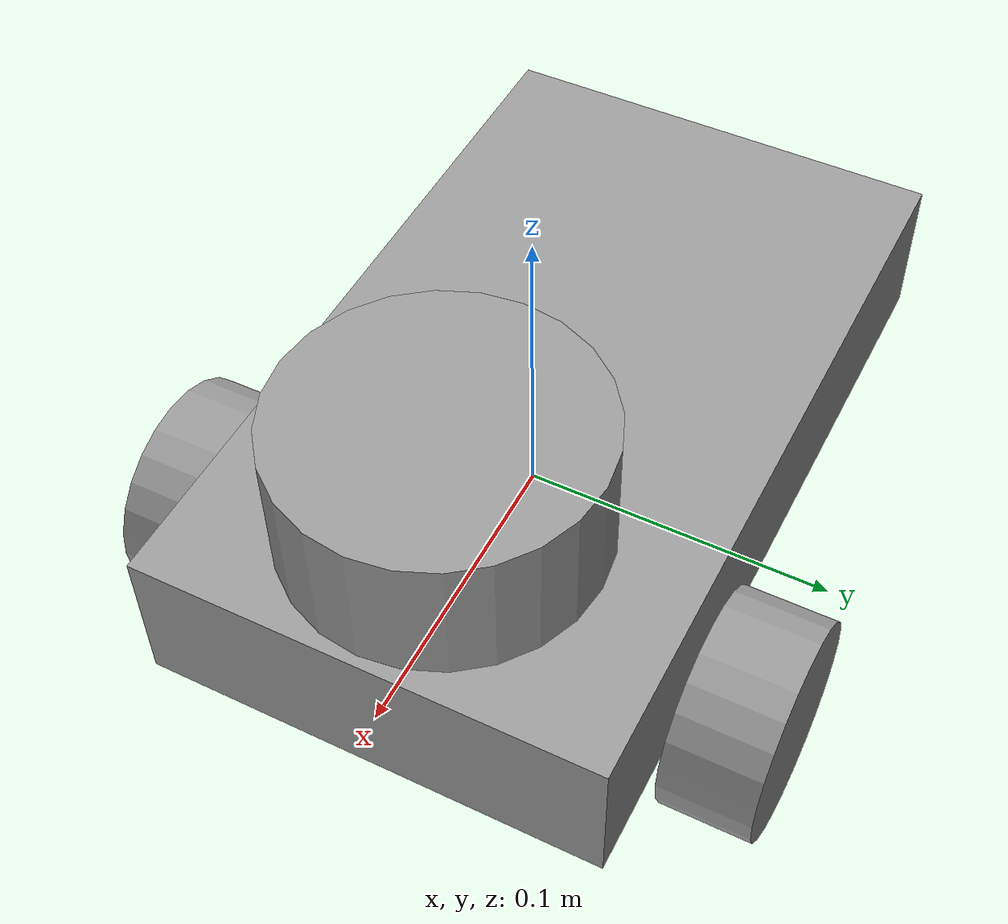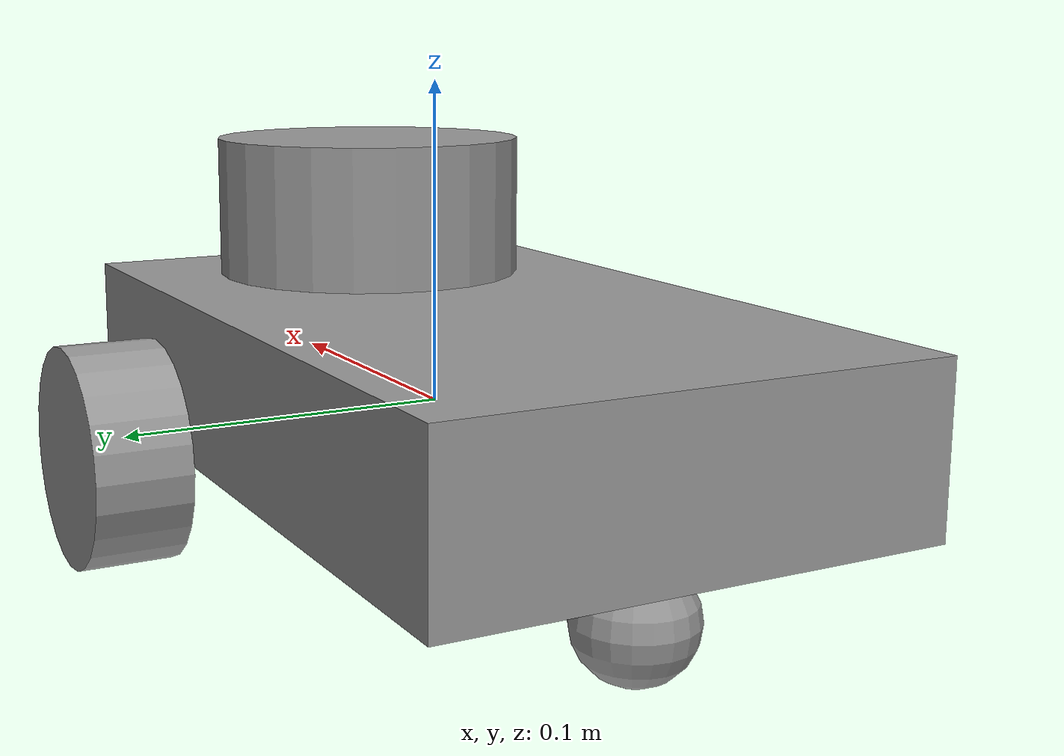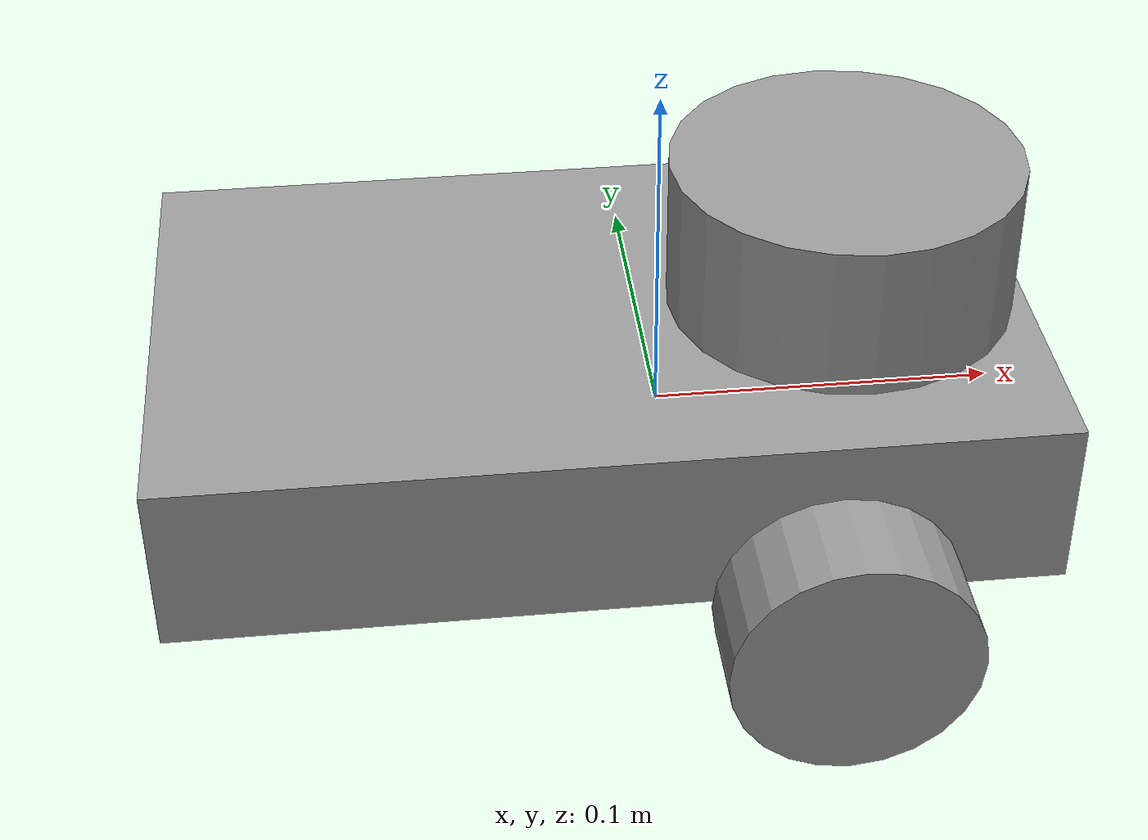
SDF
<?xml version='1.0'?>
<sdf version='1.5'>
  <model name='my_lidar'>
    <link name='link_0'>
      <inertial>
        <mass>1</mass>
        <inertia>
          <ixx>0.166667</ixx>
          <ixy>0</ixy>
          <ixz>0</ixz>
          <iyy>0.166667</iyy>
          <iyz>0</iyz>
          <izz>0.166667</izz>
        </inertia>
        <pose>0 0 0 0 -0 0</pose>
      </inertial>
      <pose>-0.019224 0.000234 0.009501 0 -0 0</pose>
      <gravity>1</gravity>
      <self_collide>0</self_collide>
      <kinematic>0</kinematic>
      <enable_wind>0</enable_wind>
      <visual name='visual'>
        <pose>0 0 0 0 -0 0</pose>
        <geometry>
          <box>
            <size>0.25 0.15 0.05</size>
          </box>
        </geometry>
        <material>
          <lighting>1</lighting>
          <script>
            <uri>file://media/materials/scripts/gazebo.material</uri>
            <name>Gazebo/Grey</name>
          </script>
          <shader type='pixel'>
            <normal_map>__default__</normal_map>
          </shader>
          <ambient>0.3 0.3 0.3 1</ambient>
          <diffuse>0.7 0.7 0.7 1</diffuse>
          <specular>0.01 0.01 0.01 1</specular>
          <emissive>0 0 0 1</emissive>
        </material>
        <transparency>0</transparency>
        <cast_shadows>1</cast_shadows>
      </visual>
      <collision name='collision'>
        <laser_retro>0</laser_retro>
        <max_contacts>10</max_contacts>
        <pose>0 0 0 0 -0 0</pose>
        <geometry>
          <box>
            <size>0.25 0.15 0.05</size>
          </box>
        </geometry>
        <surface>
          <friction>
            <ode>
              <mu>1</mu>
              <mu2>1</mu2>
              <fdir1>0 0 0</fdir1>
              <slip1>0</slip1>
              <slip2>0</slip2>
            </ode>
            <torsional>
              <coefficient>1</coefficient>
              <patch_radius>0</patch_radius>
              <surface_radius>0</surface_radius>
              <use_patch_radius>1</use_patch_radius>
              <ode>
                <slip>0</slip>
              </ode>
            </torsional>
          </friction>
          <bounce>
            <restitution_coefficient>0</restitution_coefficient>
            <threshold>1e+06</threshold>
          </bounce>
          <contact>
            <collide_without_contact>0</collide_without_contact>
            <collide_without_contact_bitmask>1</collide_without_contact_bitmask>
            <collide_bitmask>1</collide_bitmask>
            <ode>
              <soft_cfm>0</soft_cfm>
              <soft_erp>0.2</soft_erp>
              <kp>1e+13</kp>
              <kd>1</kd>
              <max_vel>0.01</max_vel>
              <min_depth>0</min_depth>
            </ode>
            <bullet>
              <split_impulse>1</split_impulse>
              <split_impulse_penetration_threshold>-0.01</split_impulse_penetration_threshold>
              <soft_cfm>0</soft_cfm>
              <soft_erp>0.2</soft_erp>
              <kp>1e+13</kp>
              <kd>1</kd>
            </bullet>
          </contact>
        </surface>
      </collision>
    </link>
    <link name='link_1'>
      <inertial>
        <mass>1</mass>
        <inertia>
          <ixx>0.145833</ixx>
          <ixy>0</ixy>
          <ixz>0</ixz>
          <iyy>0.145833</iyy>
          <iyz>0</iyz>
          <izz>0.125</izz>
        </inertia>
        <pose>0 0 0 0 -0 0</pose>
      </inertial>
      <pose>0.040615 0.092594 -0.015502 1.5708 -0 0</pose>
      <gravity>1</gravity>
      <self_collide>0</self_collide>
      <kinematic>0</kinematic>
      <enable_wind>0</enable_wind>
      <visual name='visual'>
        <pose>0 0 0 0 -0 0</pose>
        <geometry>
          <cylinder>
            <radius>0.035</radius>
            <length>0.03</length>
          </cylinder>
        </geometry>
        <material>
          <lighting>1</lighting>
          <script>
            <uri>file://media/materials/scripts/gazebo.material</uri>
            <name>Gazebo/Grey</name>
          </script>
          <shader type='pixel'>
            <normal_map>__default__</normal_map>
          </shader>
          <ambient>0.3 0.3 0.3 1</ambient>
          <diffuse>0.7 0.7 0.7 1</diffuse>
          <specular>0.01 0.01 0.01 1</specular>
          <emissive>0 0 0 1</emissive>
        </material>
        <transparency>0</transparency>
        <cast_shadows>1</cast_shadows>
      </visual>
      <collision name='collision'>
        <laser_retro>0</laser_retro>
        <max_contacts>10</max_contacts>
        <pose>0 0 0 0 -0 0</pose>
        <geometry>
          <cylinder>
            <radius>0.035</radius>
            <length>0.03</length>
          </cylinder>
        </geometry>
        <surface>
          <friction>
            <ode>
              <mu>1</mu>
              <mu2>1</mu2>
              <fdir1>0 0 0</fdir1>
              <slip1>0</slip1>
              <slip2>0</slip2>
            </ode>
            <torsional>
              <coefficient>1</coefficient>
              <patch_radius>0</patch_radius>
              <surface_radius>0</surface_radius>
              <use_patch_radius>1</use_patch_radius>
              <ode>
                <slip>0</slip>
              </ode>
            </torsional>
          </friction>
          <bounce>
            <restitution_coefficient>0</restitution_coefficient>
            <threshold>1e+06</threshold>
          </bounce>
          <contact>
            <collide_without_contact>0</collide_without_contact>
            <collide_without_contact_bitmask>1</collide_without_contact_bitmask>
            <collide_bitmask>1</collide_bitmask>
            <ode>
              <soft_cfm>0</soft_cfm>
              <soft_erp>0.2</soft_erp>
              <kp>1e+13</kp>
              <kd>1</kd>
              <max_vel>0.01</max_vel>
              <min_depth>0</min_depth>
            </ode>
            <bullet>
              <split_impulse>1</split_impulse>
              <split_impulse_penetration_threshold>-0.01</split_impulse_penetration_threshold>
              <soft_cfm>0</soft_cfm>
              <soft_erp>0.2</soft_erp>
              <kp>1e+13</kp>
              <kd>1</kd>
            </bullet>
          </contact>
        </surface>
      </collision>
    </link>
    <link name='link_1_clone'>
      <inertial>
        <mass>1</mass>
        <inertia>
          <ixx>0.145833</ixx>
          <ixy>0</ixy>
          <ixz>0</ixz>
          <iyy>0.145833</iyy>
          <iyz>0</iyz>
          <izz>0.125</izz>
        </inertia>
        <pose>0 0 0 0 -0 0</pose>
      </inertial>
      <pose>0.040615 -0.092209 -0.015502 1.5708 -0 0</pose>
      <gravity>1</gravity>
      <self_collide>0</self_collide>
      <kinematic>0</kinematic>
      <enable_wind>0</enable_wind>
      <visual name='visual'>
        <pose>0 0 0 0 -0 0</pose>
        <geometry>
          <cylinder>
            <radius>0.035</radius>
            <length>0.03</length>
          </cylinder>
        </geometry>
        <material>
          <lighting>1</lighting>
          <script>
            <uri>file://media/materials/scripts/gazebo.material</uri>
            <name>Gazebo/Grey</name>
          </script>
          <shader type='pixel'>
            <normal_map>__default__</normal_map>
          </shader>
          <ambient>0.3 0.3 0.3 1</ambient>
          <diffuse>0.7 0.7 0.7 1</diffuse>
          <specular>0.01 0.01 0.01 1</specular>
          <emissive>0 0 0 1</emissive>
        </material>
        <transparency>0</transparency>
        <cast_shadows>1</cast_shadows>
      </visual>
      <collision name='collision'>
        <laser_retro>0</laser_retro>
        <max_contacts>10</max_contacts>
        <pose>0 0 0 0 -0 0</pose>
        <geometry>
          <cylinder>
            <radius>0.035</radius>
            <length>0.03</length>
          </cylinder>
        </geometry>
        <surface>
          <friction>
            <ode>
              <mu>1</mu>
              <mu2>1</mu2>
              <fdir1>0 0 0</fdir1>
              <slip1>0</slip1>
              <slip2>0</slip2>
            </ode>
            <torsional>
              <coefficient>1</coefficient>
              <patch_radius>0</patch_radius>
              <surface_radius>0</surface_radius>
              <use_patch_radius>1</use_patch_radius>
              <ode>
                <slip>0</slip>
              </ode>
            </torsional>
          </friction>
          <bounce>
            <restitution_coefficient>0</restitution_coefficient>
            <threshold>1e+06</threshold>
          </bounce>
          <contact>
            <collide_without_contact>0</collide_without_contact>
            <collide_without_contact_bitmask>1</collide_without_contact_bitmask>
            <collide_bitmask>1</collide_bitmask>
            <ode>
              <soft_cfm>0</soft_cfm>
              <soft_erp>0.2</soft_erp>
              <kp>1e+13</kp>
              <kd>1</kd>
              <max_vel>0.01</max_vel>
              <min_depth>0</min_depth>
            </ode>
            <bullet>
              <split_impulse>1</split_impulse>
              <split_impulse_penetration_threshold>-0.01</split_impulse_penetration_threshold>
              <soft_cfm>0</soft_cfm>
              <soft_erp>0.2</soft_erp>
              <kp>1e+13</kp>
              <kd>1</kd>
            </bullet>
          </contact>
        </surface>
      </collision>
    </link>
    <link name='link_2'>
      <inertial>
        <mass>1</mass>
        <inertia>
          <ixx>0.1</ixx>
          <ixy>0</ixy>
          <ixz>0</ixz>
          <iyy>0.1</iyy>
          <iyz>0</iyz>
          <izz>0.1</izz>
        </inertia>
        <pose>0 0 0 0 -0 0</pose>
      </inertial>
      <pose>-0.114514 0.000978 -0.032999 0 -0 0</pose>
      <gravity>1</gravity>
      <self_collide>0</self_collide>
      <kinematic>0</kinematic>
      <enable_wind>0</enable_wind>
      <visual name='visual'>
        <pose>0 0 0 0 -0 0</pose>
        <geometry>
          <sphere>
            <radius>0.0175</radius>
          </sphere>
        </geometry>
        <material>
          <lighting>1</lighting>
          <script>
            <uri>file://media/materials/scripts/gazebo.material</uri>
            <name>Gazebo/Grey</name>
          </script>
          <shader type='pixel'>
            <normal_map>__default__</normal_map>
          </shader>
          <ambient>0.3 0.3 0.3 1</ambient>
          <diffuse>0.7 0.7 0.7 1</diffuse>
          <specular>0.01 0.01 0.01 1</specular>
          <emissive>0 0 0 1</emissive>
        </material>
        <transparency>0</transparency>
        <cast_shadows>1</cast_shadows>
      </visual>
      <collision name='collision'>
        <laser_retro>0</laser_retro>
        <max_contacts>10</max_contacts>
        <pose>0 0 0 0 -0 0</pose>
        <geometry>
          <sphere>
            <radius>0.0175</radius>
          </sphere>
        </geometry>
        <surface>
          <friction>
            <ode>
              <mu>1</mu>
              <mu2>1</mu2>
              <fdir1>0 0 0</fdir1>
              <slip1>0</slip1>
              <slip2>0</slip2>
            </ode>
            <torsional>
              <coefficient>1</coefficient>
              <patch_radius>0</patch_radius>
              <surface_radius>0</surface_radius>
              <use_patch_radius>1</use_patch_radius>
              <ode>
                <slip>0</slip>
              </ode>
            </torsional>
          </friction>
          <bounce>
            <restitution_coefficient>0</restitution_coefficient>
            <threshold>1e+06</threshold>
          </bounce>
          <contact>
            <collide_without_contact>0</collide_without_contact>
            <collide_without_contact_bitmask>1</collide_without_contact_bitmask>
            <collide_bitmask>1</collide_bitmask>
            <ode>
              <soft_cfm>0</soft_cfm>
              <soft_erp>0.2</soft_erp>
              <kp>1e+13</kp>
              <kd>1</kd>
              <max_vel>0.01</max_vel>
              <min_depth>0</min_depth>
            </ode>
            <bullet>
              <split_impulse>1</split_impulse>
              <split_impulse_penetration_threshold>-0.01</split_impulse_penetration_threshold>
              <soft_cfm>0</soft_cfm>
              <soft_erp>0.2</soft_erp>
              <kp>1e+13</kp>
              <kd>1</kd>
            </bullet>
          </contact>
        </surface>
      </collision>
    </link>
    <link name='link_3'>
      <inertial>
        <mass>1</mass>
        <inertia>
          <ixx>0.145833</ixx>
          <ixy>0</ixy>
          <ixz>0</ixz>
          <iyy>0.145833</iyy>
          <iyz>0</iyz>
          <izz>0.125</izz>
        </inertia>
        <pose>0 0 0 0 -0 0</pose>
      </inertial>
      <pose>0.05251 -0.001596 0.054501 0 -0 0</pose>
      <gravity>1</gravity>
      <self_collide>0</self_collide>
      <kinematic>0</kinematic>
      <enable_wind>0</enable_wind>
      <visual name='visual'>
        <pose>0 0 0 0 -0 0</pose>
        <geometry>
          <cylinder>
            <radius>0.05</radius>
            <length>0.05</length>
          </cylinder>
        </geometry>
        <material>
          <lighting>1</lighting>
          <script>
            <uri>file://media/materials/scripts/gazebo.material</uri>
            <name>Gazebo/Grey</name>
          </script>
          <shader type='pixel'>
            <normal_map>__default__</normal_map>
          </shader>
          <ambient>0.3 0.3 0.3 1</ambient>
          <diffuse>0.7 0.7 0.7 1</diffuse>
          <specular>0.01 0.01 0.01 1</specular>
          <emissive>0 0 0 1</emissive>
        </material>
        <transparency>0</transparency>
        <cast_shadows>1</cast_shadows>
      </visual>
      <collision name='collision'>
        <laser_retro>1</laser_retro>
        <max_contacts>10</max_contacts>
        <pose>0 0 0 0 -0 0</pose>
        <geometry>
          <cylinder>
            <radius>0.05</radius>
            <length>0.05</length>
          </cylinder>
        </geometry>
        <surface>
          <friction>
            <ode>
              <mu>1</mu>
              <mu2>1</mu2>
              <fdir1>0 0 0</fdir1>
              <slip1>0</slip1>
              <slip2>0</slip2>
            </ode>
            <torsional>
              <coefficient>1</coefficient>
              <patch_radius>0</patch_radius>
              <surface_radius>0</surface_radius>
              <use_patch_radius>1</use_patch_radius>
              <ode>
                <slip>0</slip>
              </ode>
            </torsional>
          </friction>
          <bounce>
            <restitution_coefficient>0</restitution_coefficient>
            <threshold>1e+06</threshold>
          </bounce>
          <contact>
            <collide_without_contact>0</collide_without_contact>
            <collide_without_contact_bitmask>1</collide_without_contact_bitmask>
            <collide_bitmask>1</collide_bitmask>
            <ode>
              <soft_cfm>0</soft_cfm>
              <soft_erp>0.2</soft_erp>
              <kp>1e+13</kp>
              <kd>1</kd>
              <max_vel>0.01</max_vel>
              <min_depth>0</min_depth>
            </ode>
            <bullet>
              <split_impulse>1</split_impulse>
              <split_impulse_penetration_threshold>-0.01</split_impulse_penetration_threshold>
              <soft_cfm>0</soft_cfm>
              <soft_erp>0.2</soft_erp>
              <kp>1e+13</kp>
              <kd>1</kd>
            </bullet>
          </contact>
        </surface>
      </collision>
    </link>
    <joint name='link_0_right_link1_clone' type='revolute'>
      <parent>link_0</parent>
      <child>link_1_clone</child>
      <pose>0 0 0 0 -0 0</pose>
      <axis>
        <xyz>0 0 1</xyz>
        <limit>
          <lower>-1.79769e+308</lower>
          <upper>1.79769e+308</upper>
          <effort>-1</effort>
          <velocity>-1</velocity>
        </limit>
        <dynamics>
          <spring_reference>0</spring_reference>
          <spring_stiffness>0</spring_stiffness>
          <damping>0</damping>
          <friction>0</friction>
        </dynamics>
      </axis>
      <physics>
        <ode>
          <limit>
            <cfm>0</cfm>
            <erp>0.2</erp>
          </limit>
          <suspension>
            <cfm>0</cfm>
            <erp>0.2</erp>
          </suspension>
        </ode>
      </physics>
    </joint>
    <joint name='link_0_left_link_1' type='revolute'>
      <parent>link_0</parent>
      <child>link_1</child>
      <pose>0 0 0 0 -0 0</pose>
      <axis>
        <xyz>0 0 1</xyz>
        <limit>
          <lower>-1.79769e+308</lower>
          <upper>1.79769e+308</upper>
          <effort>-1</effort>
          <velocity>-1</velocity>
        </limit>
        <dynamics>
          <spring_reference>0</spring_reference>
          <spring_stiffness>0</spring_stiffness>
          <damping>0</damping>
          <friction>0</friction>
        </dynamics>
      </axis>
      <physics>
        <ode>
          <limit>
            <cfm>0</cfm>
            <erp>0.2</erp>
          </limit>
          <suspension>
            <cfm>0</cfm>
            <erp>0.2</erp>
          </suspension>
        </ode>
      </physics>
    </joint>
    <joint name='link_0_caster_link_2' type='ball'>
      <parent>link_0</parent>
      <child>link_2</child>
      <pose>0 0 0 0 -0 0</pose>
      <physics>
        <ode>
          <limit>
            <cfm>0</cfm>
            <erp>0.2</erp>
          </limit>
          <suspension>
            <cfm>0</cfm>
            <erp>0.2</erp>
          </suspension>
        </ode>
      </physics>
    </joint>
    <joint name='link_0_lidar_link_3' type='fixed'>
      <parent>link_0</parent>
      <child>link_3</child>
      <pose>0 0 0 0 -0 0</pose>
      <physics>
        <ode>
          <limit>
            <cfm>0</cfm>
            <erp>0.2</erp>
          </limit>
          <suspension>
            <cfm>0</cfm>
            <erp>0.2</erp>
          </suspension>
        </ode>
      </physics>
    </joint>
    <static>0</static>
    <allow_auto_disable>1</allow_auto_disable>
  </model>
</sdf>
